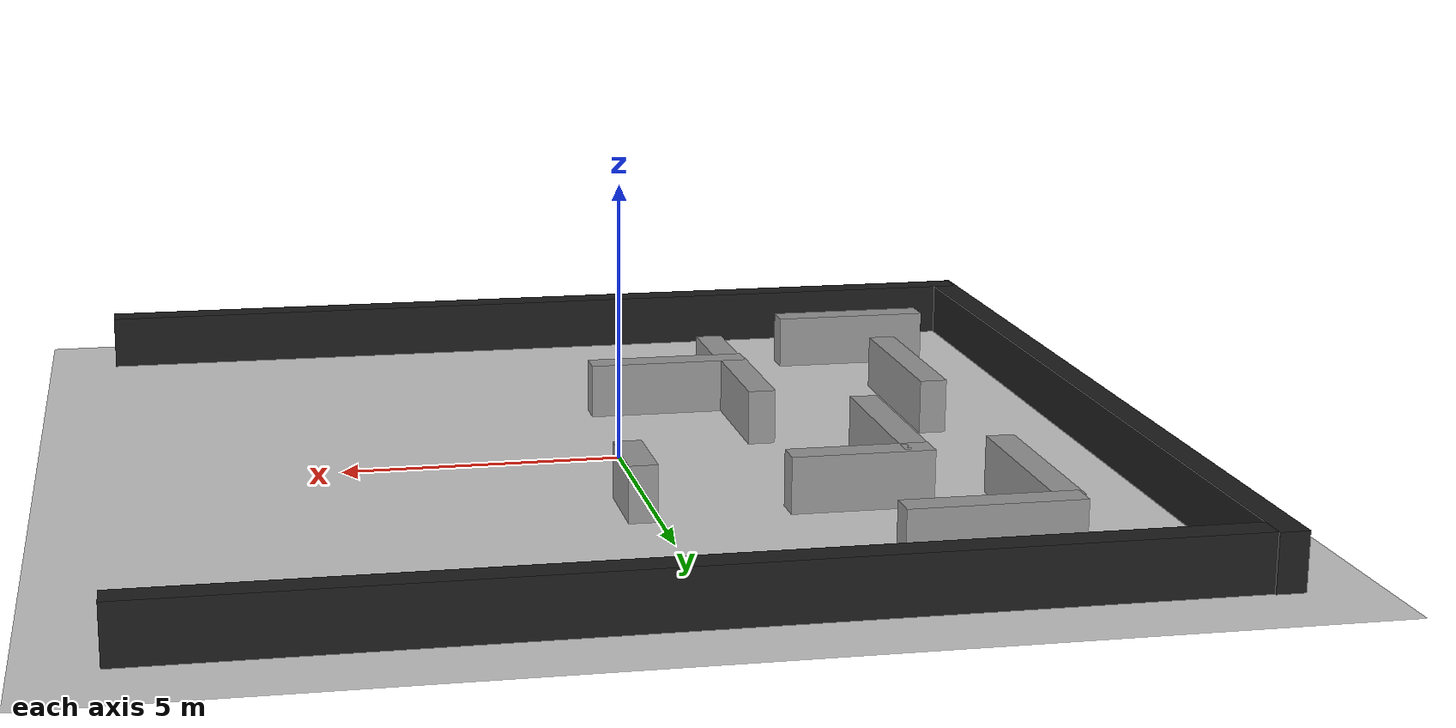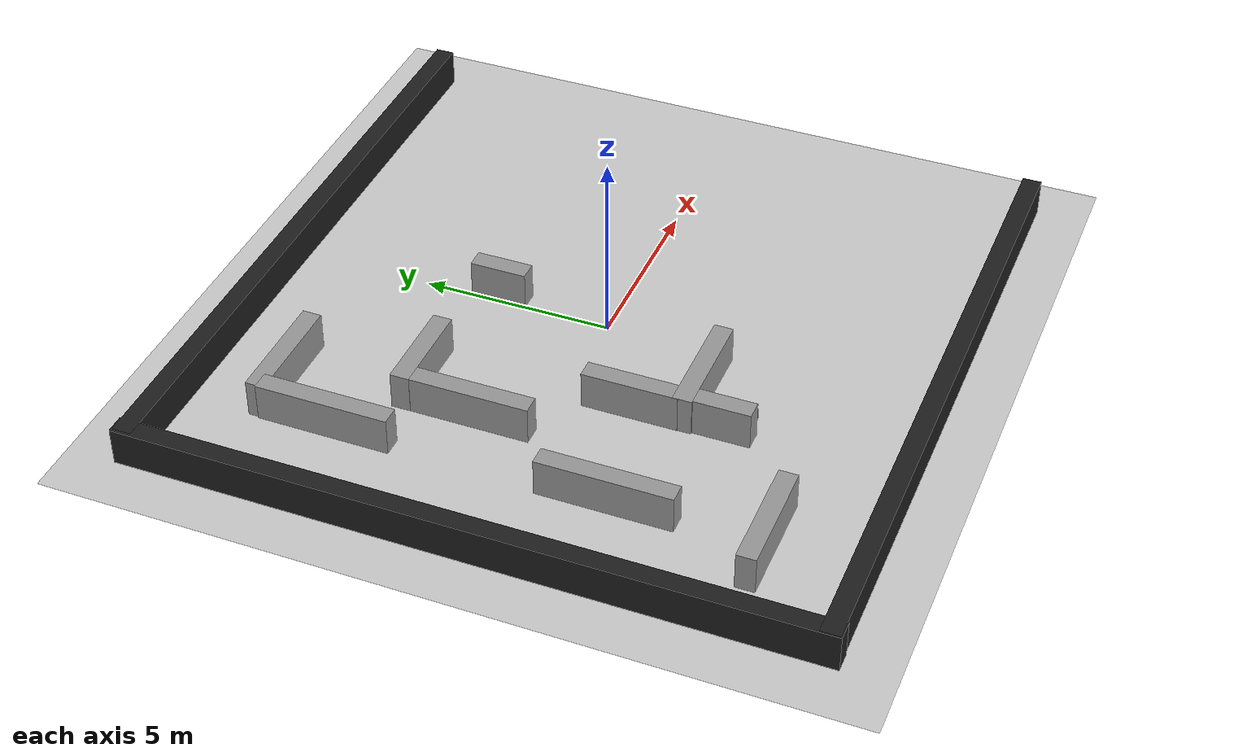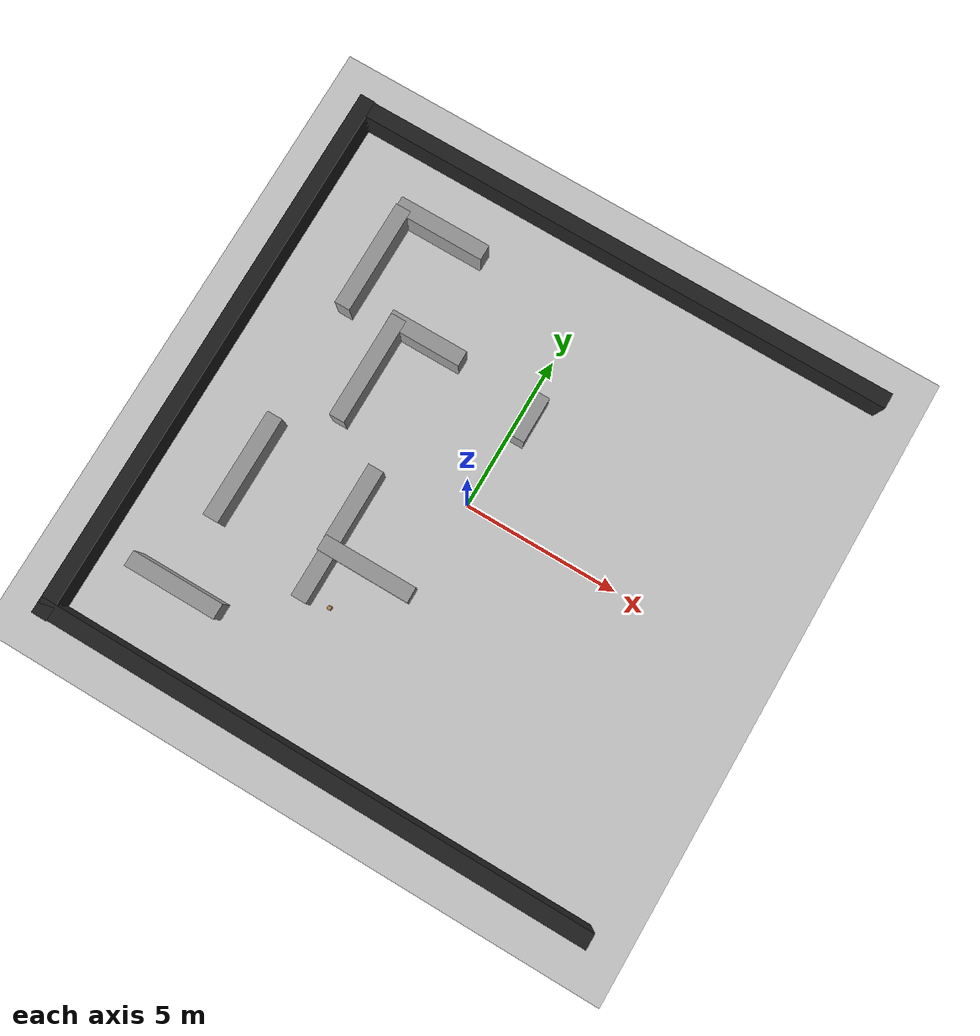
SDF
<sdf version="1.7">
 <world name="default">
  <model name="ground_plane">
   <static>1</static>
   <link name="link">
    <collision name="collision">
     <geometry><plane><normal>0 0 1</normal><size>100 100</size></plane></geometry>
     <surface><friction><ode><mu>100</mu><mu2>50</mu2></ode></friction></surface>
    </collision>
    <visual name="visual">
     <cast_shadows>0</cast_shadows>
     <geometry><plane><normal>0 0 1</normal><size>100 100</size></plane></geometry>
     <material>
      <script><uri>file://media/materials/scripts/gazebo.material</uri><name>Gazebo/Grey</name></script>
     </material>
    </visual>
   </link>
  </model>
  <model name="h6">
   <static>1</static>
   <pose>0.285592 3.0417 0.5 0 -0 0</pose>
   <link name="link">
    <inertial>
     <mass>1</mass>
     <inertia>
      <ixx>0.166667</ixx>
      <ixy>0</ixy>
      <ixz>0</ixz>
      <iyy>0.166667</iyy>
      <iyz>0</iyz>
      <izz>0.166667</izz>
     </inertia>
    </inertial>
    <collision name="collision"><geometry><box><size>0.5 1.5 1</size></box></geometry></collision>
    <visual name="visual">
     <geometry><box><size>0.5 1.5 1</size></box></geometry>
     <material>
      <script><name>Gazebo/Grey</name><uri>file://media/materials/scripts/gazebo.material</uri></script>
     </material>
    </visual>
   </link>
  </model>
  <model name="h7">
   <static>1</static>
   <pose>-2.69565 -4.10612 0.5 0 -0 0</pose>
   <link name="link">
    <inertial>
     <mass>1</mass>
     <inertia>
      <ixx>0.166667</ixx>
      <ixy>0</ixy>
      <ixz>0</ixz>
      <iyy>0.166667</iyy>
      <iyz>0</iyz>
      <izz>0.166667</izz>
     </inertia>
    </inertial>
    <collision name="collision"><geometry><box><size>0.5 1.5 1</size></box></geometry></collision>
    <visual name="visual">
     <geometry><box><size>0.5 1.5 1</size></box></geometry>
     <material>
      <script><name>Gazebo/Grey</name><uri>file://media/materials/scripts/gazebo.material</uri></script>
     </material>
    </visual>
   </link>
  </model>
  <model name="h9">
   <static>1</static>
   <pose>-2.75522 -1.76159 0.5 0 -0 0</pose>
   <link name="link">
    <inertial>
     <mass>1</mass>
     <inertia>
      <ixx>0.166667</ixx>
      <ixy>0</ixy>
      <ixz>0</ixz>
      <iyy>0.166667</iyy>
      <iyz>0</iyz>
      <izz>0.166667</izz>
     </inertia>
    </inertial>
    <collision name="collision"><geometry><box><size>0.5 2.5 1</size></box></geometry></collision>
    <visual name="visual">
     <geometry><box><size>0.5 2.5 1</size></box></geometry>
     <material>
      <script><name>Gazebo/Grey</name><uri>file://media/materials/scripts/gazebo.material</uri></script>
     </material>
    </visual>
   </link>
  </model>
  <model name="h10">
   <static>1</static>
   <pose>-4.49131 1.89926 0.5 0 -0 0</pose>
   <link name="link">
    <inertial>
     <mass>1</mass>
     <inertia>
      <ixx>0.166667</ixx>
      <ixy>0</ixy>
      <ixz>0</ixz>
      <iyy>0.166667</iyy>
      <iyz>0</iyz>
      <izz>0.166667</izz>
     </inertia>
    </inertial>
    <collision name="collision"><geometry><box><size>0.5 3.5 1</size></box></geometry></collision>
    <visual name="visual">
     <geometry><box><size>0.5 3.5 1</size></box></geometry>
     <material>
      <script><name>Gazebo/Grey</name><uri>file://media/materials/scripts/gazebo.material</uri></script>
     </material>
    </visual>
   </link>
  </model>
  <model name="v16">
   <static>1</static>
   <pose>-1.49419 -3.1222 0.5 0 -0 0</pose>
   <link name="link">
    <inertial>
     <mass>1</mass>
     <inertia>
      <ixx>0.166667</ixx>
      <ixy>0</ixy>
      <ixz>0</ixz>
      <iyy>0.166667</iyy>
      <iyz>0</iyz>
      <izz>0.166667</izz>
     </inertia>
    </inertial>
    <collision name="collision"><geometry><box><size>3 0.5 1</size></box></geometry></collision>
    <visual name="visual">
     <geometry><box><size>3 0.5 1</size></box></geometry>
     <material>
      <script><name>Gazebo/Grey</name><uri>file://media/materials/scripts/gazebo.material</uri></script>
     </material>
    </visual>
   </link>
  </model>
  <model name="v18">
   <static>1</static>
   <pose>-3.4972 3.52257 0.5 0 -0 0</pose>
   <link name="link">
    <inertial>
     <mass>1</mass>
     <inertia>
      <ixx>0.166667</ixx>
      <ixy>0</ixy>
      <ixz>0</ixz>
      <iyy>0.166667</iyy>
      <iyz>0</iyz>
      <izz>0.166667</izz>
     </inertia>
    </inertial>
    <collision name="collision"><geometry><box><size>2.5 0.5 1</size></box></geometry></collision>
    <visual name="visual">
     <geometry><box><size>2.5 0.5 1</size></box></geometry>
     <material>
      <script><name>Gazebo/Grey</name><uri>file://media/materials/scripts/gazebo.material</uri></script>
     </material>
    </visual>
   </link>
  </model>
  <model name="aruco_column_6x6_100mm_0">
   <link name="link">
    <pose>0 0 0.15 0 -0 0</pose>
    <inertial>
     <mass>1</mass>
     <inertia><ixx>1</ixx><ixy>0</ixy><ixz>0</ixz><iyy>1</iyy><iyz>0</iyz><izz>1</izz></inertia>
    </inertial>
    <collision name="collision">
     <geometry><box><size>0.12 0.12 0.3</size></box></geometry>
     <surface>
      <contact>
       <poissons_ratio>0.347</poissons_ratio>
       <elastic_modulus>8.8e+09</elastic_modulus>
       <ode><kp>100000</kp><kd>1</kd><max_vel>1</max_vel><min_depth>0.001</min_depth></ode>
      </contact>
      <friction>
       <torsional>
        <coefficient>1</coefficient>
        <use_patch_radius>0</use_patch_radius>
        <surface_radius>0.05</surface_radius>
       </torsional>
      </friction>
     </surface>
    </collision>
    <visual name="visual">
     <geometry><box><size>0.12 0.12 0.3</size></box></geometry>
     <material>
      <script><uri>file://media/materials/scripts/gazebo.material</uri><name>Gazebo/Wood</name></script>
     </material>
    </visual>
   </link>
   <link name="aruco_6x6_100mm_0::main">
    <pose relative_to="aruco_6x6_100mm_0::__model__">0 0 0 0 -0 0</pose>
    <visual name="main_Visual">
     <geometry><box><size>0.1 0.1 0.001</size></box></geometry>
     <material>
      <script>
       <uri>file://media/materials/scripts</uri>
       <uri>file://media/materials/textures</uri>
       <name>aruco_6x6_100mm_0</name>
      </script>
     </material>
    </visual>
    <inertial>
     <inertia><ixx>1</ixx><ixy>0</ixy><ixz>0</ixz><iyy>1</iyy><iyz>0</iyz><izz>1</izz></inertia>
     <mass>1</mass>
    </inertial>
   </link>
   <frame name="aruco_6x6_100mm_0::__model__" attached_to="aruco_6x6_100mm_0::main">
    <pose relative_to="__model__">-0.06 0 0.19 3.14159 1.57079 3.14159</pose>
   </frame>
   <joint name="aruco_6x6_100mm_0_joint" type="fixed">
    <child>aruco_6x6_100mm_0::main</child>
    <parent>link</parent>
   </joint>
   <pose>-1.9041 -4.63082 -0.001049 -0 -0.000405 -1.57</pose>
  </model>
  <model name="west_wall">
   <link name="link">
    <inertial>
     <mass>1</mass>
     <inertia>
      <ixx>0.166667</ixx>
      <ixy>0</ixy>
      <ixz>0</ixz>
      <iyy>0.166667</iyy>
      <iyz>0</iyz>
      <izz>0.166667</izz>
     </inertia>
    </inertial>
    <visual name="visual">
     <geometry><box><size>18 0.5 1</size></box></geometry>
     <material>
      <script><name>Gazebo/Black</name><uri>file://media/materials/scripts/gazebo.material</uri></script>
      <shader type="pixel"><normal_map>__default__</normal_map></shader>
      <ambient>0 0 0 1</ambient>
      <diffuse>0 0 0 1</diffuse>
      <specular>0.1 0.1 0.1 1</specular>
      <emissive>0 0 0 1</emissive>
     </material>
    </visual>
    <collision name="collision">
     <geometry><box><size>10.5 0.5 1</size></box></geometry>
     <surface>
      <friction>
       <ode><mu>1</mu><mu2>1</mu2><fdir1>0 0 0</fdir1><slip1>0</slip1><slip2>0</slip2></ode>
       <torsional>
        <coefficient>1</coefficient>
        <patch_radius>0</patch_radius>
        <surface_radius>0</surface_radius>
        <use_patch_radius>1</use_patch_radius>
        <ode><slip>0</slip></ode>
       </torsional>
      </friction>
      <bounce><restitution_coefficient>0</restitution_coefficient><threshold>1e+06</threshold></bounce>
      <contact>
       <collide_without_contact>0</collide_without_contact>
       <collide_without_contact_bitmask>1</collide_without_contact_bitmask>
       <collide_bitmask>1</collide_bitmask>
       <ode>
        <soft_cfm>0</soft_cfm>
        <soft_erp>0.2</soft_erp>
        <kp>1e+13</kp>
        <kd>1</kd>
        <max_vel>0.01</max_vel>
        <min_depth>0</min_depth>
       </ode>
       <bullet>
        <split_impulse>1</split_impulse>
        <split_impulse_penetration_threshold>-0.01</split_impulse_penetration_threshold>
        <soft_cfm>0</soft_cfm>
        <soft_erp>0.2</soft_erp>
        <kp>1e+13</kp>
        <kd>1</kd>
       </bullet>
      </contact>
     </surface>
    </collision>
   </link>
   <static>1</static>
   <pose>0.041978 8.71884 0.5 0 -0 0</pose>
  </model>
  <model name="west_wall_clone">
   <link name="link">
    <inertial>
     <mass>1</mass>
     <inertia>
      <ixx>0.166667</ixx>
      <ixy>0</ixy>
      <ixz>0</ixz>
      <iyy>0.166667</iyy>
      <iyz>0</iyz>
      <izz>0.166667</izz>
     </inertia>
    </inertial>
    <visual name="visual">
     <geometry><box><size>18 0.5 1</size></box></geometry>
     <material>
      <script><name>Gazebo/Black</name><uri>file://media/materials/scripts/gazebo.material</uri></script>
      <shader type="pixel"><normal_map>__default__</normal_map></shader>
      <ambient>0 0 0 1</ambient>
      <diffuse>0 0 0 1</diffuse>
      <specular>0.1 0.1 0.1 1</specular>
      <emissive>0 0 0 1</emissive>
     </material>
    </visual>
    <collision name="collision">
     <geometry><box><size>10.5 0.5 1</size></box></geometry>
     <surface>
      <friction>
       <ode><mu>1</mu><mu2>1</mu2><fdir1>0 0 0</fdir1><slip1>0</slip1><slip2>0</slip2></ode>
       <torsional>
        <coefficient>1</coefficient>
        <patch_radius>0</patch_radius>
        <surface_radius>0</surface_radius>
        <use_patch_radius>1</use_patch_radius>
        <ode><slip>0</slip></ode>
       </torsional>
      </friction>
      <bounce><restitution_coefficient>0</restitution_coefficient><threshold>1e+06</threshold></bounce>
      <contact>
       <collide_without_contact>0</collide_without_contact>
       <collide_without_contact_bitmask>1</collide_without_contact_bitmask>
       <collide_bitmask>1</collide_bitmask>
       <ode>
        <soft_cfm>0</soft_cfm>
        <soft_erp>0.2</soft_erp>
        <kp>1e+13</kp>
        <kd>1</kd>
        <max_vel>0.01</max_vel>
        <min_depth>0</min_depth>
       </ode>
       <bullet>
        <split_impulse>1</split_impulse>
        <split_impulse_penetration_threshold>-0.01</split_impulse_penetration_threshold>
        <soft_cfm>0</soft_cfm>
        <soft_erp>0.2</soft_erp>
        <kp>1e+13</kp>
        <kd>1</kd>
       </bullet>
      </contact>
     </surface>
    </collision>
   </link>
   <static>1</static>
   <pose>0.036385 -8.71998 0.5 0 -0 0</pose>
  </model>
  <model name="west_wall_clone_clone_clone">
   <link name="link">
    <inertial>
     <mass>1</mass>
     <inertia>
      <ixx>0.166667</ixx>
      <ixy>0</ixy>
      <ixz>0</ixz>
      <iyy>0.166667</iyy>
      <iyz>0</iyz>
      <izz>0.166667</izz>
     </inertia>
    </inertial>
    <visual name="visual">
     <geometry><box><size>18 0.5 1</size></box></geometry>
     <material>
      <script><name>Gazebo/Black</name><uri>file://media/materials/scripts/gazebo.material</uri></script>
      <shader type="pixel"><normal_map>__default__</normal_map></shader>
      <ambient>0 0 0 1</ambient>
      <diffuse>0 0 0 1</diffuse>
      <specular>0.1 0.1 0.1 1</specular>
      <emissive>0 0 0 1</emissive>
     </material>
    </visual>
    <collision name="collision">
     <geometry><box><size>10.5 0.5 1</size></box></geometry>
     <surface>
      <friction>
       <ode><mu>1</mu><mu2>1</mu2><fdir1>0 0 0</fdir1><slip1>0</slip1><slip2>0</slip2></ode>
       <torsional>
        <coefficient>1</coefficient>
        <patch_radius>0</patch_radius>
        <surface_radius>0</surface_radius>
        <use_patch_radius>1</use_patch_radius>
        <ode><slip>0</slip></ode>
       </torsional>
      </friction>
      <bounce><restitution_coefficient>0</restitution_coefficient><threshold>1e+06</threshold></bounce>
      <contact>
       <collide_without_contact>0</collide_without_contact>
       <collide_without_contact_bitmask>1</collide_without_contact_bitmask>
       <collide_bitmask>1</collide_bitmask>
       <ode>
        <soft_cfm>0</soft_cfm>
        <soft_erp>0.2</soft_erp>
        <kp>1e+13</kp>
        <kd>1</kd>
        <max_vel>0.01</max_vel>
        <min_depth>0</min_depth>
       </ode>
       <bullet>
        <split_impulse>1</split_impulse>
        <split_impulse_penetration_threshold>-0.01</split_impulse_penetration_threshold>
        <soft_cfm>0</soft_cfm>
        <soft_erp>0.2</soft_erp>
        <kp>1e+13</kp>
        <kd>1</kd>
       </bullet>
      </contact>
     </surface>
    </collision>
   </link>
   <static>1</static>
   <pose>-8.77386 0.000917 0.5 0 0 -1.56864</pose>
  </model>
  <model name="h10_clone">
   <static>1</static>
   <pose>-6.10193 4.84313 0.5 0 -0 0</pose>
   <link name="link">
    <inertial>
     <mass>1</mass>
     <inertia>
      <ixx>0.166667</ixx>
      <ixy>0</ixy>
      <ixz>0</ixz>
      <iyy>0.166667</iyy>
      <iyz>0</iyz>
      <izz>0.166667</izz>
     </inertia>
    </inertial>
    <collision name="collision"><geometry><box><size>0.5 3.5 1</size></box></geometry></collision>
    <visual name="visual">
     <geometry><box><size>0.5 3.5 1</size></box></geometry>
     <material>
      <script><name>Gazebo/Grey</name><uri>file://media/materials/scripts/gazebo.material</uri></script>
     </material>
    </visual>
   </link>
  </model>
  <model name="h10_clone_0">
   <static>1</static>
   <pose>-6.07685 -2.4237 0.5 0 -0 0</pose>
   <link name="link">
    <inertial>
     <mass>1</mass>
     <inertia>
      <ixx>0.166667</ixx>
      <ixy>0</ixy>
      <ixz>0</ixz>
      <iyy>0.166667</iyy>
      <iyz>0</iyz>
      <izz>0.166667</izz>
     </inertia>
    </inertial>
    <collision name="collision"><geometry><box><size>0.5 3.5 1</size></box></geometry></collision>
    <visual name="visual">
     <geometry><box><size>0.5 3.5 1</size></box></geometry>
     <material>
      <script><name>Gazebo/Grey</name><uri>file://media/materials/scripts/gazebo.material</uri></script>
     </material>
    </visual>
   </link>
  </model>
  <model name="v16_clone">
   <static>1</static>
   <pose>-5.96711 -6.30113 0.5 0 -0 0</pose>
   <link name="link">
    <inertial>
     <mass>1</mass>
     <inertia>
      <ixx>0.166667</ixx>
      <ixy>0</ixy>
      <ixz>0</ixz>
      <iyy>0.166667</iyy>
      <iyz>0</iyz>
      <izz>0.166667</izz>
     </inertia>
    </inertial>
    <collision name="collision"><geometry><box><size>3 0.5 1</size></box></geometry></collision>
    <visual name="visual">
     <geometry><box><size>3 0.5 1</size></box></geometry>
     <material>
      <script><name>Gazebo/Grey</name><uri>file://media/materials/scripts/gazebo.material</uri></script>
     </material>
    </visual>
   </link>
  </model>
  <model name="v16_clone_0_clone">
   <static>1</static>
   <pose>-4.81128 6.62469 0.5 0 -0 0</pose>
   <link name="link">
    <inertial>
     <mass>1</mass>
     <inertia>
      <ixx>0.166667</ixx>
      <ixy>0</ixy>
      <ixz>0</ixz>
      <iyy>0.166667</iyy>
      <iyz>0</iyz>
      <izz>0.166667</izz>
     </inertia>
    </inertial>
    <collision name="collision"><geometry><box><size>3 0.5 1</size></box></geometry></collision>
    <visual name="visual">
     <geometry><box><size>3 0.5 1</size></box></geometry>
     <material>
      <script><name>Gazebo/Grey</name><uri>file://media/materials/scripts/gazebo.material</uri></script>
     </material>
    </visual>
   </link>
  </model>
 </world>
</sdf>
